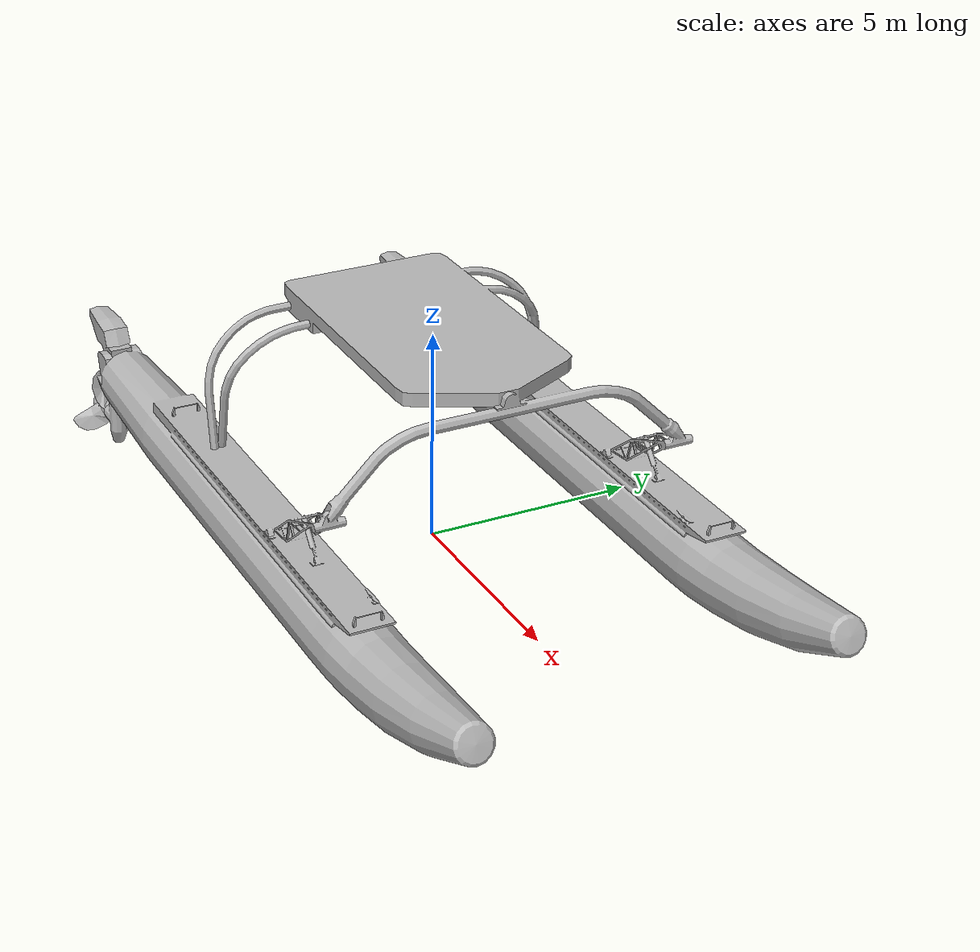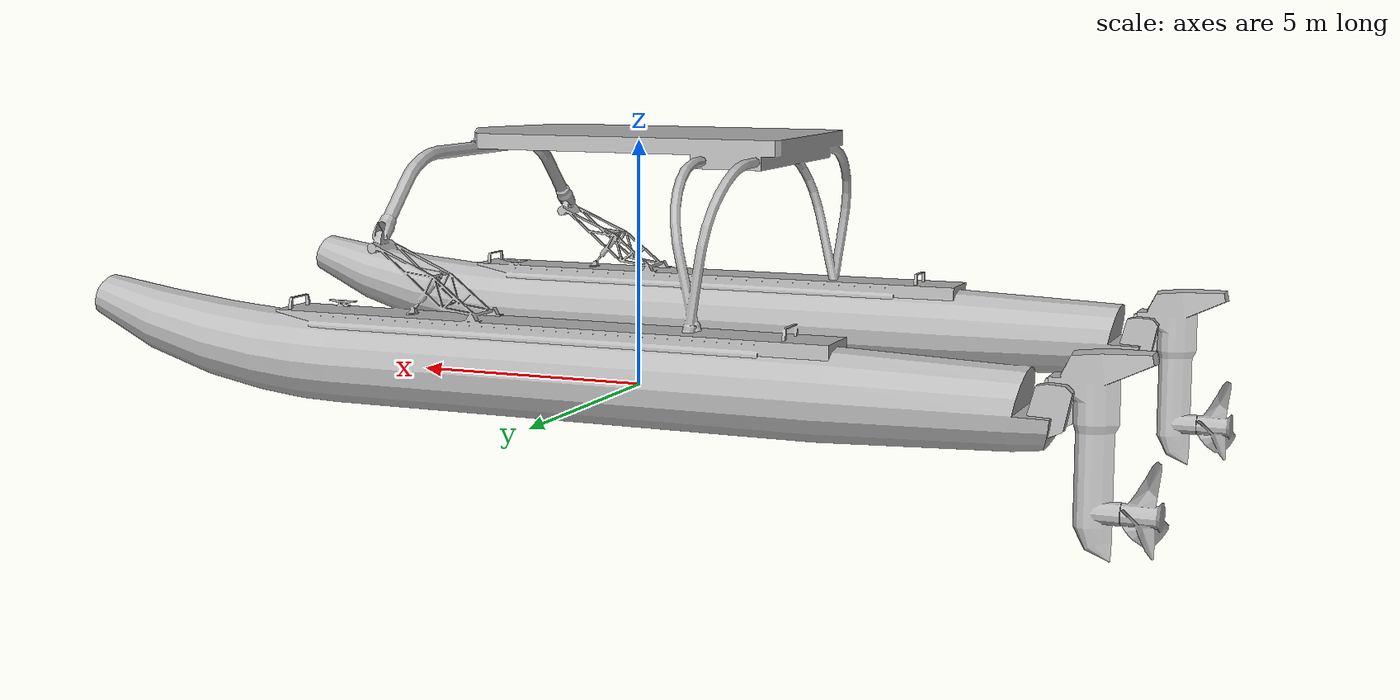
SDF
<?xml version='1.0'?>
<sdf version='1.7'>
  <model name='wam-v_4x'>
    <enable_wind>true</enable_wind>

    <link name="base_link">
      <visual name="visual">
        <geometry>
          <mesh>
            <scale>4 4 4</scale>
            <uri>model://wam-v/meshes/WAM-V-Base.dae</uri>
          </mesh>
        </geometry>
      </visual>
      <collision name="collision">
        <geometry>
          <mesh>
            <uri>model://wam-v_4x/meshes/wam-v-base_collision_406_4x.stl</uri>
          </mesh>
        </geometry>
      </collision>
      <inertial>
        <pose>-2.0 0 0 0 0 0</pose>
        <mass>11520</mass>
        <inertia>
          <ixx>7680</ixx>
          <ixy>0</ixy>
          <iyy>25152</iyy>
          <iyz>0</iyz>
          <izz>28544</izz>
        </inertia>
      </inertial>
    </link>

    <link name="left_engine_link">
      <pose>-9.495104 4.10854 1.272948 0 0 0</pose>
      <visual name="visual">
        <geometry>
          <mesh>
            <scale>4 4 4</scale>
            <uri>model://wam-v/meshes/engine.dae</uri>
          </mesh>
        </geometry>
      </visual>
      <collision name="engine_vertical_axis_collision">
        <pose>-0.64 0 -0.96 0 0 0</pose>
        <geometry>
          <box>
            <size>0.8 0.60 3.32</size>
          </box>
        </geometry>
      </collision>
      <collision name="engine_rear_end_collision">
        <pose>-1.36 0 0.48 0 0 0</pose>
        <geometry>
          <box>
            <size>0.48 0.60 0.48</size>
          </box>
        </geometry>
      </collision>
      <inertial>
        <mass>960</mass>
        <inertia>
          <ixx>56.91136</ixx>
          <ixy>0</ixy>
          <iyy>58.312</iyy>
          <iyz>0</iyz>
          <izz>5</izz>
        </inertia>
      </inertial>
    </link>
    <joint name="left_engine_joint" type="revolute">
      <parent>base_link</parent>
      <child>left_engine_link</child>
      <axis>
        <xyz>0 0 1</xyz>
        <limit>
          <lower>-1.570796</lower>
          <upper>1.570796</upper>
        </limit>
        <dynamics>
          <damping>0.05</damping>
        </dynamics>
      </axis>
    </joint>

    <link name="right_engine_link">
      <pose>-9.495104 -4.10854 1.272948 0 0 0</pose>
      <visual name="visual">
        <geometry>
          <mesh>
            <scale>4 4 4</scale>
            <uri>model://wam-v/meshes/engine.dae</uri>
          </mesh>
        </geometry>
      </visual>
      <collision name="engine_vertical_axis_collision">
        <pose>-0.64 0 -0.96 0 0 0</pose>
        <geometry>
          <box>
            <size>0.8 0.60 3.32</size>
          </box>
        </geometry>
      </collision>
      <collision name="engine_rear_end_collision">
        <pose>-1.36 0 0.48 0 0 0</pose>
        <geometry>
          <box>
            <size>0.48 0.60 0.48</size>
          </box>
        </geometry>
      </collision>
      <inertial>
        <mass>960</mass>
        <inertia>
          <ixx>56.91136</ixx>
          <ixy>0</ixy>
          <iyy>58.312</iyy>
          <iyz>0</iyz>
          <izz>5</izz>
        </inertia>
      </inertial>
    </link>
    <joint name="right_engine_joint" type="revolute">
      <parent>base_link</parent>
      <child>right_engine_link</child>
      <axis>
        <xyz>0 0 1</xyz>
        <limit>
          <lower>-1.570796</lower>
          <upper>1.570796</upper>
        </limit>
        <dynamics>
          <damping>0.05</damping>
        </dynamics>
      </axis>
    </joint>

    <link name="left_propeller_link">
      <pose relative_to="left_propeller_joint">0 0 0 0 0 0</pose>
      <visual name="visual">
        <geometry>
          <mesh>
            <scale>4 4 4</scale>
            <uri>model://wam-v/meshes/propeller.dae</uri>
          </mesh>
        </geometry>
      </visual>
      <collision name="collision">
        <pose>-0.32 0 0 0 1.570796 0</pose>
        <geometry>
          <cylinder>
            <length>0.72</length>
            <radius>0.96</radius>
          </cylinder>
        </geometry>
      </collision>
      <inertial>
        <mass>32</mass>
        <inertia>
          <ixx>0.54688</ixx>
          <ixy>0</ixy>
          <iyy>0.54688</iyy>
          <iyz>0</iyz>
          <izz>0.9216</izz>
        </inertia>
      </inertial>
    </link>
    <joint name="left_propeller_joint" type="revolute">
      <pose relative_to="left_engine_link">-1.112624 0 -2.037484 0 0 0</pose>
      <parent>left_engine_link</parent>
      <child>left_propeller_link</child>
      <axis>
        <xyz>1 0 0</xyz>
        <dynamics>
          <damping>0.01</damping>
        </dynamics>
        <limit>
          <lower>-1e+16</lower>
          <upper>1e+16</upper>
        </limit>
      </axis>
    </joint>

    <link name="right_propeller_link">
      <pose relative_to="right_propeller_joint">0 0 0 0 0 0</pose>
      <visual name="visual">
        <geometry>
          <mesh>
            <scale>4 4 4</scale>
            <uri>model://wam-v/meshes/propeller.dae</uri>
          </mesh>
        </geometry>
      </visual>
      <collision name="collision">
        <pose>-0.32 0 0 0 1.570796 0</pose>
        <geometry>
          <cylinder>
            <length>0.72</length>
            <radius>0.96</radius>
          </cylinder>
        </geometry>
      </collision>
      <inertial>
        <mass>32</mass>
        <inertia>
          <ixx>0.54688</ixx>
          <ixy>0</ixy>
          <iyy>0.54688</iyy>
          <iyz>0</iyz>
          <izz>0.9216</izz>
        </inertia>
      </inertial>
    </link>
    <joint name="right_propeller_joint" type="revolute">
      <pose relative_to="right_engine_link">-1.112624 0 -2.037484 0 0 0</pose>
      <parent>right_engine_link</parent>
      <child>right_propeller_link</child>
      <axis>
        <xyz>1 0 0</xyz>
        <dynamics>
          <damping>0.01</damping>
        </dynamics>
        <limit>
          <lower>-1e+16</lower>
          <upper>1e+16</upper>
        </limit>
      </axis>
    </joint>

    <!-- Sensors -->
    <link name="imu_link">
      <inertial>
        <pose>0 0 0 0 0 0</pose>
        <mass>0.15</mass>
        <inertia>
          <ixx>0.00001</ixx>
          <ixy>0</ixy>
          <ixz>0</ixz>
          <iyy>0.00002</iyy>
          <iyz>0</iyz>
          <izz>0.00002</izz>
        </inertia>
      </inertial>
      <sensor name="imu_sensor" type="imu">
        <pose>0 0 0 3.141593 0 0</pose>
        <always_on>1</always_on>
        <update_rate>1000.0</update_rate>
      </sensor>
    </link>
    <joint name="imu_joint" type="revolute">
      <child>imu_link</child>
      <parent>base_link</parent>
      <axis>
        <xyz>0 0 1</xyz>
        <limit>
          <lower>0</lower>
          <upper>0</upper>
          <effort>0</effort>
          <velocity>0</velocity>
        </limit>
        <dynamics>
          <damping>1.0</damping>
        </dynamics>
      </axis>
    </joint>

    <!-- Joint state and force plugins -->
    <plugin filename="libignition-gazebo-joint-state-publisher-system.so"
      name="ignition::gazebo::systems::JointStatePublisher">
    </plugin>
    <plugin filename="libignition-gazebo-apply-joint-force-system.so"
      name="ignition::gazebo::systems::ApplyJointForce">
      <joint_name>left_engine_joint</joint_name>
    </plugin>
    <plugin filename="libignition-gazebo-apply-joint-force-system.so"
      name="ignition::gazebo::systems::ApplyJointForce">
      <joint_name>right_engine_joint</joint_name>
    </plugin>

    <!-- Thruster plugins -->
    <plugin
        filename="ignition-gazebo-thruster-system"
        name="ignition::gazebo::systems::Thruster">
      <namespace>wam-v</namespace>
      <joint_name>left_propeller_joint</joint_name>
      <use_angvel_cmd>0</use_angvel_cmd>
      <fluid_density>1000</fluid_density>
      <propeller_diameter>1.92</propeller_diameter>
      <thrust_coefficient>0.005</thrust_coefficient>
      <velocity_control>1</velocity_control>
      <max_thrust_cmd>20000.0</max_thrust_cmd>
      <min_thrust_cmd>-20000.0</min_thrust_cmd>
    </plugin>
    <plugin
        filename="ignition-gazebo-thruster-system"
        name="ignition::gazebo::systems::Thruster">
      <namespace>wam-v</namespace>
      <joint_name>right_propeller_joint</joint_name>
      <use_angvel_cmd>0</use_angvel_cmd>
      <fluid_density>1000</fluid_density>
      <propeller_diameter>1.92</propeller_diameter>
      <thrust_coefficient>0.005</thrust_coefficient>
      <velocity_control>1</velocity_control>
      <max_thrust_cmd>20000.0</max_thrust_cmd>
      <min_thrust_cmd>-20000.0</min_thrust_cmd>
    </plugin>

    <!-- Hydrodynamics plugin -->
    <plugin
        filename="ignition-marine1-hydrodynamics-system"
        name="ignition::gazebo::systems::Hydrodynamics">
        <hydrodynamics>
          <damping_on>1</damping_on>
          <viscous_drag_on>1</viscous_drag_on>
          <pressure_drag_on>1</pressure_drag_on>

          <!-- Linear and Angular Damping -->
          <cDampL1>1.0E-6</cDampL1>
          <cDampL2>1.0E-6</cDampL2>
          <cDampR1>1.0E-6</cDampR1>
          <cDampR2>1.0E-6</cDampR2>

          <!-- 'Pressure' Drag -->
          <cPDrag1>1.0E+2</cPDrag1>
          <cPDrag2>1.0E+2</cPDrag2>
          <fPDrag>0.4</fPDrag>
          <cSDrag1>1.0E+2</cSDrag1>
          <cSDrag2>1.0E+2</cSDrag2>
          <fSDrag>0.4</fSDrag>
          <vRDrag>1.0</vRDrag>
        </hydrodynamics>
    </plugin>

    <!-- ArduPilot plugin -->
    <plugin name="ArduPilotPlugin" filename="libArduPilotPlugin.so">
      <fdm_addr>127.0.0.1</fdm_addr>
      <fdm_port_in>9012</fdm_port_in>
      <connectionTimeoutMaxCount>5</connectionTimeoutMaxCount>
      <lock_step>1</lock_step>
      <modelXYZToAirplaneXForwardZDown>0 0 0 3.141593 0 0</modelXYZToAirplaneXForwardZDown>
      <gazeboXYZToNED>0 0 0 3.141593 0 0</gazeboXYZToNED>
      <imuName>imu_sensor</imuName>

      <!--
        SERVO1_FUNCTION 26 (GroundSteering)
      -->
      <control channel="0">
        <jointName>left_engine_joint</jointName>
        <useForce>1</useForce>
        <multiplier>3.1415926</multiplier>
        <offset>-0.5</offset>
        <servo_min>1000</servo_min>
        <servo_max>2000</servo_max>
        <type>POSITION</type>
        <p_gain>200000.0</p_gain>
        <i_gain>0</i_gain>
        <d_gain>100</d_gain>
        <i_max>-1</i_max>
        <i_min>0</i_min>
        <cmd_max>1000000.0</cmd_max>
        <cmd_min>-1000000.0</cmd_min>
      </control>
      <control channel="0">
        <jointName>right_engine_joint</jointName>
        <useForce>1</useForce>
        <multiplier>3.1415926</multiplier>
        <offset>-0.5</offset>
        <servo_min>1000</servo_min>
        <servo_max>2000</servo_max>
        <type>POSITION</type>
        <p_gain>200000.0</p_gain>
        <i_gain>0</i_gain>
        <d_gain>100</d_gain>
        <i_max>-1</i_max>
        <i_min>0</i_min>
        <cmd_max>1000000.0</cmd_max>
        <cmd_min>-1000000.0</cmd_min>
      </control>

      <control channel="2">
        <jointName>left_propeller_joint</jointName>
        <useForce>1</useForce>
        <multiplier>30000</multiplier>
        <offset>-0.5</offset>
        <servo_min>1000</servo_min>
        <servo_max>2000</servo_max>
        <type>COMMAND</type>
        <cmd_topic>/model/wam-v/joint/left_propeller_joint/cmd_thrust</cmd_topic>
      </control>
      <control channel="2">
        <jointName>right_propeller_joint</jointName>
        <useForce>1</useForce>
        <multiplier>30000</multiplier>
        <offset>-0.5</offset>
        <servo_min>1000</servo_min>
        <servo_max>2000</servo_max>
        <type>COMMAND</type>
        <cmd_topic>/model/wam-v/joint/right_propeller_joint/cmd_thrust</cmd_topic>
      </control>
    </plugin>

  </model>
</sdf>
